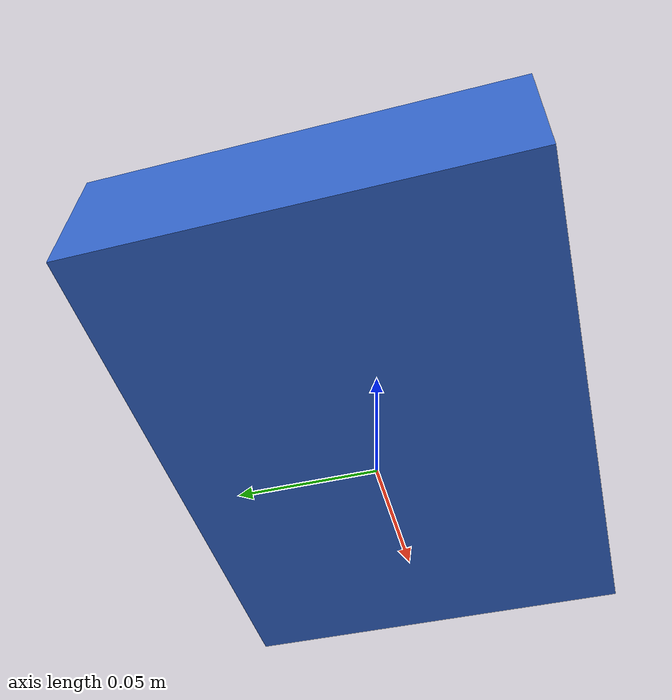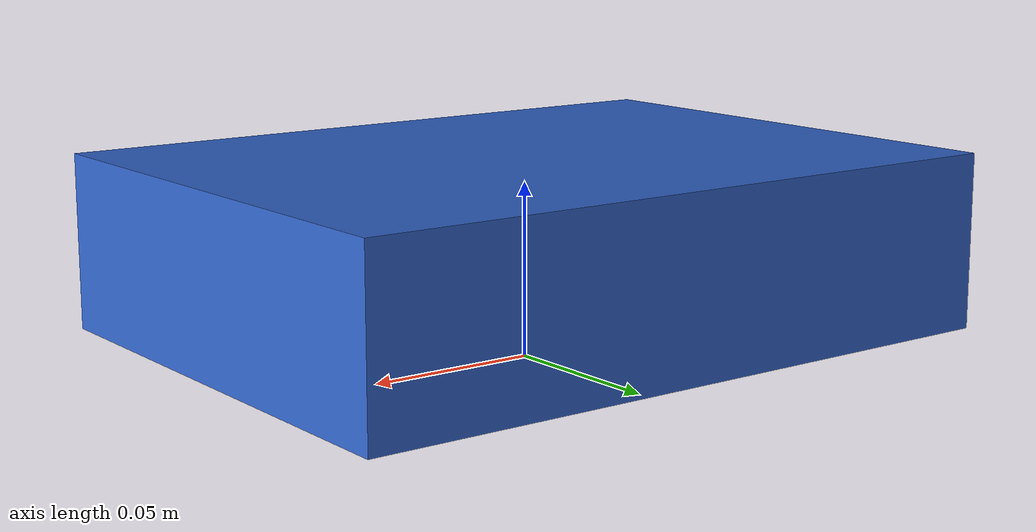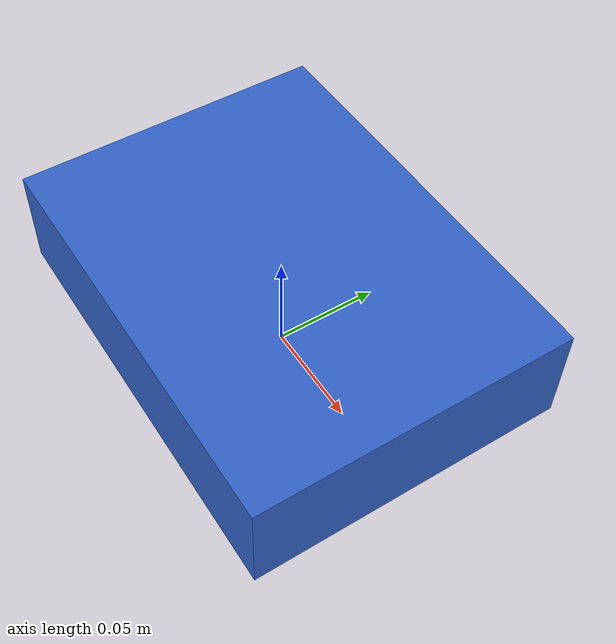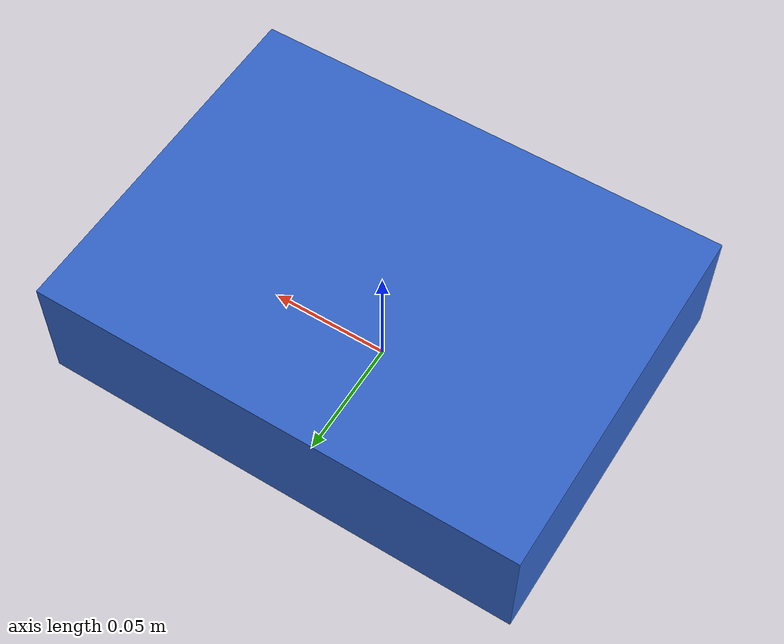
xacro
<?xml version="1.0"?>
<robot name="robotica" xmlns:xacro="http://www.ros.org/wiki/xacro">

  <!-- ── Propiedades del robot ── -->
  <xacro:property name="wheel_radius"    value="0.033"/>  <!-- metros -->
  <xacro:property name="wheel_width"     value="0.020"/>
  <xacro:property name="base_length"     value="0.200"/>
  <xacro:property name="base_width"      value="0.150"/>
  <xacro:property name="base_height"     value="0.050"/>

  <!-- ── Base ── -->
  <link name="base_footprint"/>

  <joint name="base_joint" type="fixed">
    <parent link="base_footprint"/>
    <child link="base_link"/>
    <origin xyz="0 0 ${wheel_radius}" rpy="0 0 0"/>
  </joint>

  <link name="base_link">
    <visual>
      <geometry>
        <box size="${base_length} ${base_width} ${base_height}"/>
      </geometry>
      <material name="blue">
        <color rgba="0.2 0.4 0.8 1.0"/>
      </material>
    </visual>
    <collision>
      <geometry>
        <box size="${base_length} ${base_width} ${base_height}"/>
      </geometry>
    </collision>
    <inertial>
      <mass value="1.0"/>
      <inertia ixx="0.004" ixy="0" ixz="0" iyy="0.006" iyz="0" izz="0.009"/>
    </inertial>
  </link>

  <!-- ── IMU (posición central) ── -->
  <joint name="imu_joint" type="fixed">
    <parent link="base_link"/>
    <child link="imu_link"/>
    <origin xyz="0 0 0.025" rpy="0 0 0"/>
  </joint>
  <link name="imu_link"/>

  <!-- ── LIDAR (posición frontal) ── -->
  <joint name="lidar_joint" type="fixed">
    <parent link="base_link"/>
    <child link="lidar_link"/>
    <origin xyz="0.08 0 0.04" rpy="0 0 0"/>
  </joint>
  <link name="lidar_link"/>

  <!-- ── Gimbal/Cámara (servo x2) ── -->
  <joint name="gimbal_pan_joint" type="revolute">
    <parent link="base_link"/>
    <child link="gimbal_pan_link"/>
    <origin xyz="0.05 0 0.08" rpy="0 0 0"/>
    <axis xyz="0 0 1"/>
    <limit lower="-1.57" upper="1.57" effort="10" velocity="3.14"/>
  </joint>
  <link name="gimbal_pan_link"/>

  <joint name="gimbal_tilt_joint" type="revolute">
    <parent link="gimbal_pan_link"/>
    <child link="gimbal_tilt_link"/>
    <origin xyz="0 0 0.02" rpy="0 0 0"/>
    <axis xyz="0 1 0"/>
    <limit lower="-0.785" upper="0.785" effort="10" velocity="3.14"/>
  </joint>
  <link name="gimbal_tilt_link"/>

  <!-- ── Cámara HuskyLens en el gimbal ── -->
  <joint name="camera_joint" type="fixed">
    <parent link="gimbal_tilt_link"/>
    <child link="camera_link"/>
    <origin xyz="0.02 0 0" rpy="0 0 0"/>
  </joint>
  <link name="camera_link"/>

</robot>
